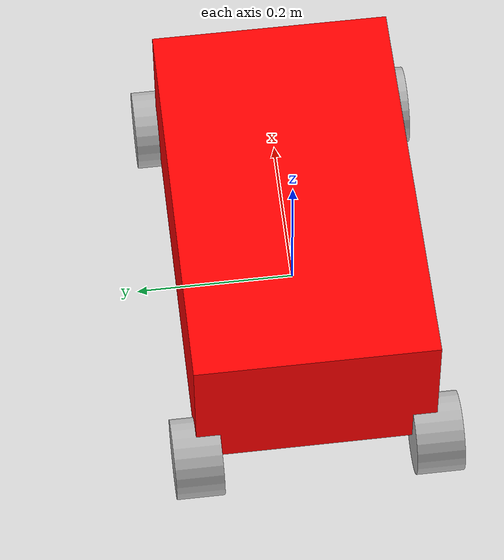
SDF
<?xml version="1.0"?>
<sdf version="1.7">
  <model name="simple_bot">
    <static>false</static>

    <!-- Base Body -->
    <link name="base_link">
      <pose>0 0 0.1 0 0 0</pose>
      <visual name="body_visual">
        <geometry>
          <box>
            <size>0.5 0.3 0.2</size>
          </box>
        </geometry>
        <material>
          <ambient>1 0 0 1</ambient>   <!-- red body -->
          <diffuse>1 0 0 1</diffuse>
          <specular>0.2 0.2 0.2 1</specular>
        </material>
      </visual>
      <collision name="body_collision">
        <geometry>
          <box>
            <size>0.5 0.3 0.2</size>
          </box>
        </geometry>
      </collision>
      <inertial>
        <mass>15.0</mass>  <!-- heavier to resist tipping -->
        <inertia>
          <ixx>0.5</ixx>
          <iyy>0.5</iyy>
          <izz>0.5</izz>
        </inertia>
      </inertial>
    </link>

    <!-- Depth Camera -->
    <sensor name="depth_camera" type="depth">
      <always_on>1</always_on>
      <update_rate>30</update_rate>
      <pose>0 0 0.3 0 0 0</pose>
      <depth_camera>
        <horizontal_fov>1.047</horizontal_fov>
        <image>
          <width>640</width>
          <height>480</height>
          <format>R8G8B8</format>
        </image>
        <clip>
          <near>0.1</near>
          <far>10</far>
        </clip>
      </depth_camera>
    </sensor>

    <!-- Wheels -->

    <!-- Front Left Wheel (full grip both directions) -->
    <link name="wheel_fl">
      <pose>0.25 0.15 0 0 0 0</pose>
      <visual name="v_fl">
        <pose>0 0 0 1.5707 0 0</pose>
        <geometry>
          <cylinder>
            <radius>0.05</radius>
            <length>0.06</length>
          </cylinder>
        </geometry>
      </visual>
      <collision name="c_fl">
        <pose>0 0 0 1.5707 0 0</pose>
        <geometry>
          <cylinder>
            <radius>0.05</radius>
            <length>0.06</length>
          </cylinder>
        </geometry>
        <surface>
          <friction>
            <ode>
              <mu>1.0</mu>
              <mu2>1.0</mu2> <!-- full lateral grip -->
            </ode>
          </friction>
        </surface>
      </collision>
      <inertial>
        <mass>0.3</mass>
      </inertial>
    </link>

    <!-- Front Right Wheel (full grip both directions) -->
    <link name="wheel_fr">
      <pose>0.25 -0.15 0 0 0 0</pose>
      <visual name="v_fr">
        <pose>0 0 0 1.5707 0 0</pose>
        <geometry>
          <cylinder>
            <radius>0.05</radius>
            <length>0.06</length>
          </cylinder>
        </geometry>
      </visual>
      <collision name="c_fr">
        <pose>0 0 0 1.5707 0 0</pose>
        <geometry>
          <cylinder>
            <radius>0.05</radius>
            <length>0.06</length>
          </cylinder>
        </geometry>
        <surface>
          <friction>
            <ode>
              <mu>1.0</mu>
              <mu2>1.0</mu2>
            </ode>
          </friction>
        </surface>
      </collision>
      <inertial>
        <mass>0.3</mass>
      </inertial>
    </link>

    <!-- Rear Left Wheel (zero lateral grip) -->
    <link name="wheel_rl">
      <pose>-0.25 0.15 0 0 0 0</pose>
      <visual name="v_rl">
        <pose>0 0 0 1.5707 0 0</pose>
        <geometry>
          <cylinder>
            <radius>0.05</radius>
            <length>0.06</length>
          </cylinder>
        </geometry>
      </visual>
      <collision name="c_rl">
        <pose>0 0 0 1.5707 0 0</pose>
        <geometry>
          <cylinder>
            <radius>0.05</radius>
            <length>0.06</length>
          </cylinder>
        </geometry>
        <surface>
          <friction>
            <ode>
              <mu>1.0</mu>
              <mu2>0.0</mu2> <!-- allow sideways slip -->
            </ode>
          </friction>
        </surface>
      </collision>
      <inertial>
        <mass>0.3</mass>
      </inertial>
    </link>

    <!-- Rear Right Wheel (zero lateral grip) -->
    <link name="wheel_rr">
      <pose>-0.25 -0.15 0 0 0 0</pose>
      <visual name="v_rr">
        <pose>0 0 0 1.5707 0 0</pose>
        <geometry>
          <cylinder>
            <radius>0.05</radius>
            <length>0.06</length>
          </cylinder>
        </geometry>
      </visual>
      <collision name="c_rr">
        <pose>0 0 0 1.5707 0 0</pose>
        <geometry>
          <cylinder>
            <radius>0.05</radius>
            <length>0.06</length>
          </cylinder>
        </geometry>
        <surface>
          <friction>
            <ode>
              <mu>1.0</mu>
              <mu2>0.0</mu2>
            </ode>
          </friction>
        </surface>
      </collision>
      <inertial>
        <mass>0.3</mass>
      </inertial>
    </link>

    <!-- Wheel Joints -->
    <joint name="joint_wheel_fl" type="revolute">
      <parent>base_link</parent>
      <child>wheel_fl</child>
      <axis>
        <xyz>0 1 0</xyz>
        <limit>
          <lower>-1000</lower>
          <upper>1000</upper>
          <effort>10</effort>
          <velocity>20</velocity>
        </limit>
        <dynamics>
          <damping>5.0</damping>
        </dynamics>
      </axis>
    </joint>

    <joint name="joint_wheel_fr" type="revolute">
      <parent>base_link</parent>
      <child>wheel_fr</child>
      <axis>
        <xyz>0 1 0</xyz>
        <limit>
          <lower>-1000</lower>
          <upper>1000</upper>
          <effort>10</effort>
          <velocity>20</velocity>
        </limit>
        <dynamics>
          <damping>5.0</damping>
        </dynamics>
      </axis>
    </joint>

    <joint name="joint_wheel_rl" type="revolute">
      <parent>base_link</parent>
      <child>wheel_rl</child>
      <axis>
        <xyz>0 1 0</xyz>
        <limit>
          <lower>-1000</lower>
          <upper>1000</upper>
        </limit>
        <dynamics>
          <damping>5.0</damping>
        </dynamics>
      </axis>
    </joint>

    <joint name="joint_wheel_rr" type="revolute">
      <parent>base_link</parent>
      <child>wheel_rr</child>
      <axis>
        <xyz>0 1 0</xyz>
        <limit>
          <lower>-1000</lower>
          <upper>1000</upper>
        </limit>
        <dynamics>
          <damping>5.0</damping>
        </dynamics>
      </axis>
    </joint>

    <!-- DiffDrive Plugin (front‐wheel drive) -->
    <plugin name="gz::sim::systems::DiffDrive"
            filename="ignition-gazebo-diff-drive-system">
      <left_joint>joint_wheel_fl</left_joint>
      <right_joint>joint_wheel_fr</right_joint>
      <wheel_separation>0.5</wheel_separation>
      <wheel_radius>0.05</wheel_radius>
      <topic>/cmd_vel</topic>
      <min_velocity>-1.0</min_velocity>
      <max_velocity>1.0</max_velocity>
      <min_force>-2.0</min_force>
      <max_force>2.0</max_force>
      <odom_publish_frequency>10.0</odom_publish_frequency>
      <odom_frame_id>odom</odom_frame_id>
      <base_frame_id>base_link</base_frame_id>
      <publish_odom_tf>true</publish_odom_tf>
    </plugin>

  </model>
</sdf>
